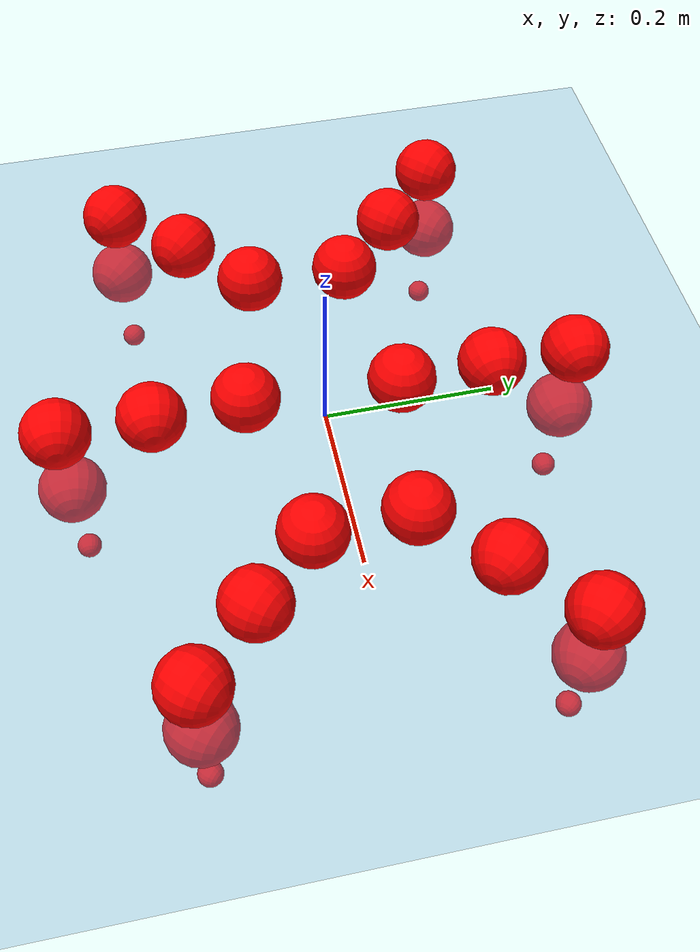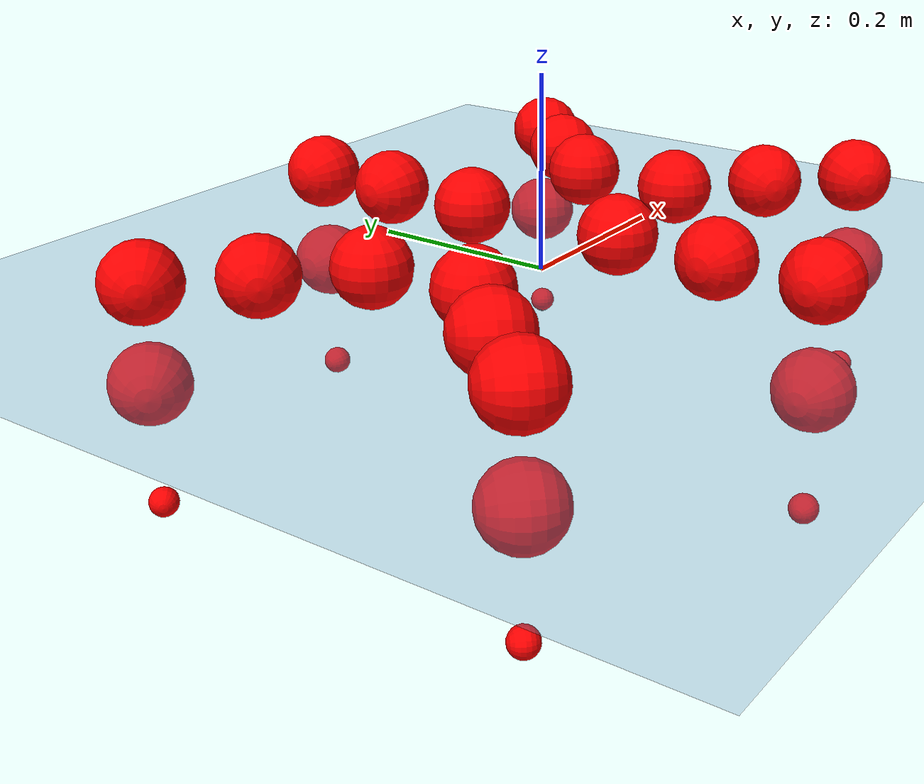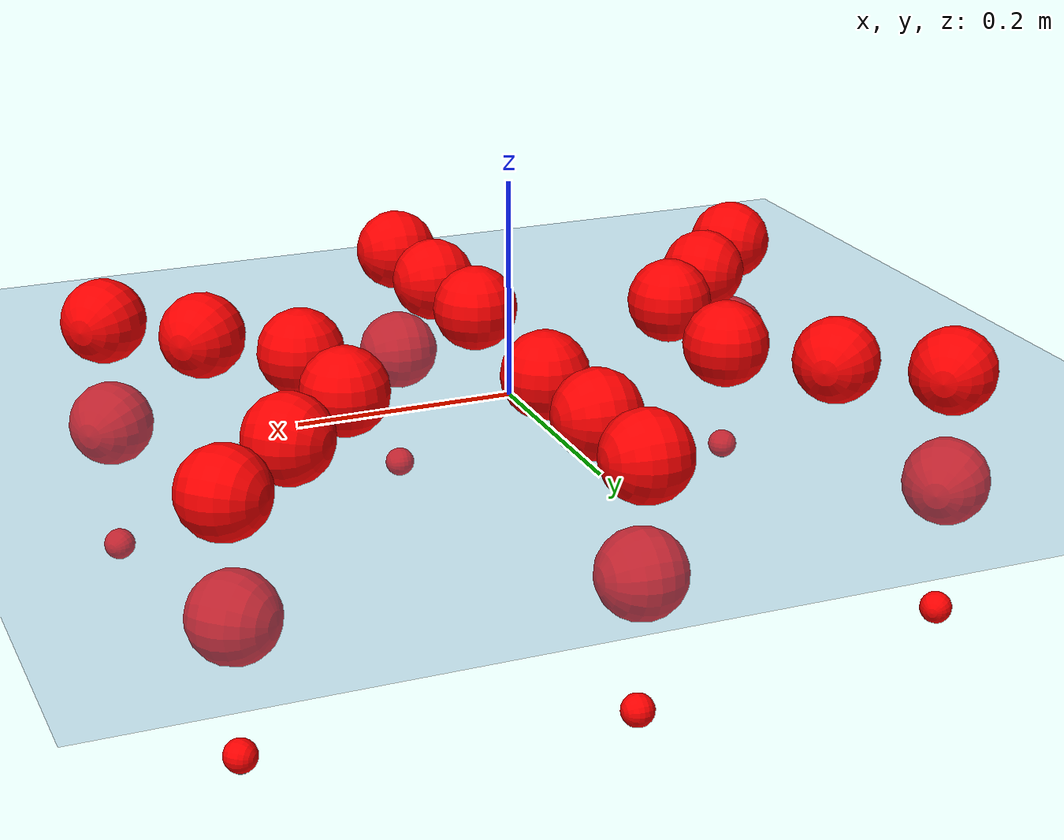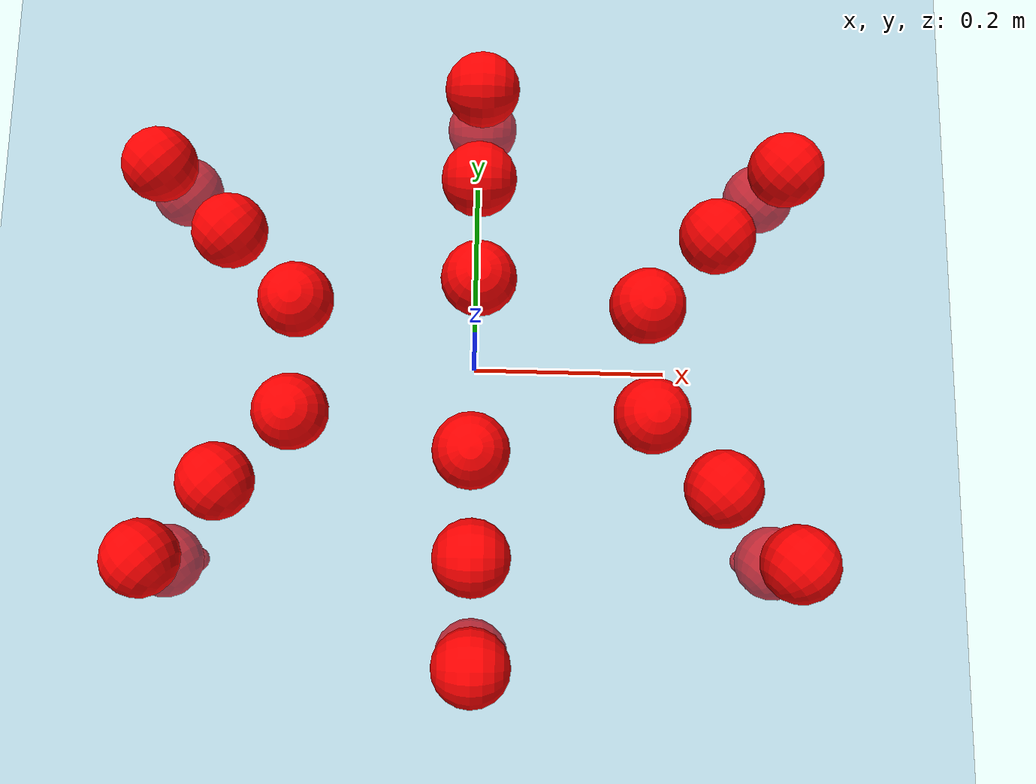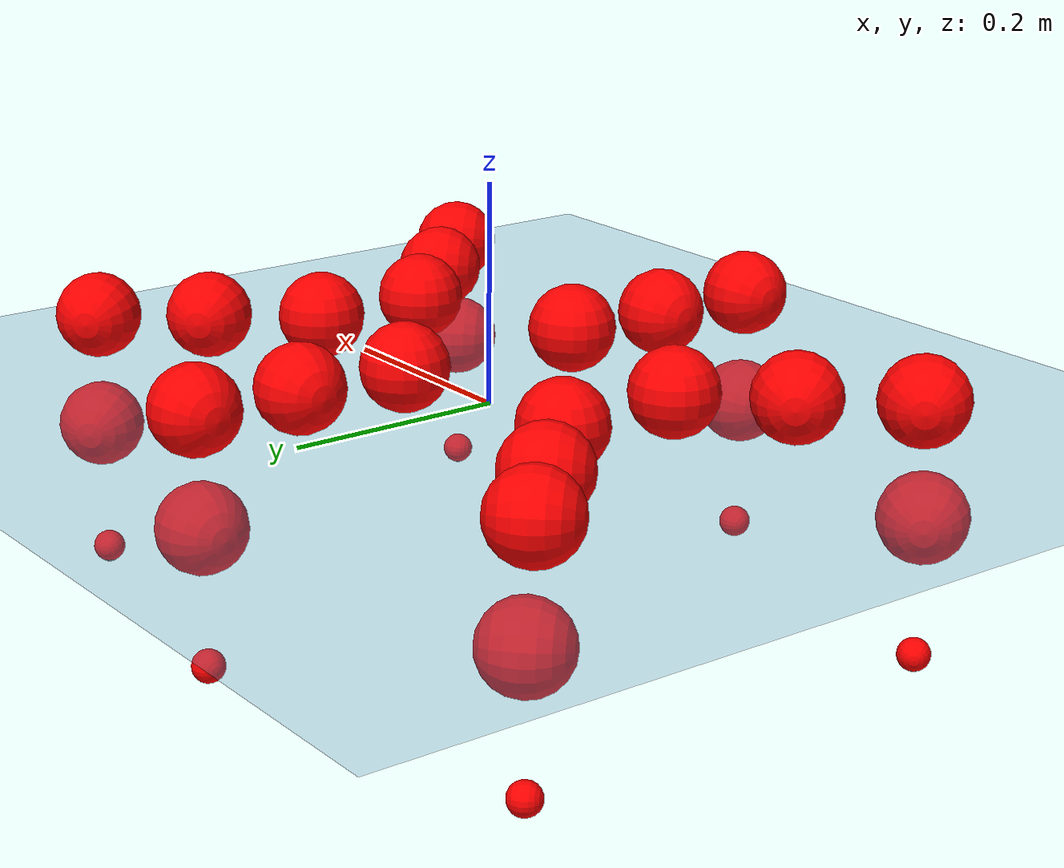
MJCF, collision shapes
<mujoco model="Golem">
  <compiler angle="radian" assetdir="assets" balanceinertia="true" inertiafromgeom="false"/>

  <option timestep="0.005" density="1.2" viscosity="2e-05"/>

  <size nkey="1"/>

  <visual>
    <quality shadowsize="8192"/>
    <map shadowclip="0.5"/>
  </visual>

  <default>
    <default class="/">
      <joint armature="0.01" damping="0.01" frictionloss="0.01"/>
      <geom contype="0" conaffinity="0" group="1" solref="-1000 -80"/>
      <site size="0.01 0.005 0.005" group="5"/>
      <general forcelimited="true" biastype="affine" gainprm="25" biasprm="0 -25 -0.5"/>
      <default class="visual">
        <geom type="mesh" group="2"/>
      </default>
      <default class="collision">
        <geom group="3"/>
      </default>
      <default class="foot">
        <geom size="0.01 0 0" condim="6" group="4" priority="1" solimp="0.015 1 0.01"/>
      </default>
      <default class="reward_collision_sphere">
        <geom group="5" rgba="1 0 0 1"/>
      </default>
    </default>
  </default>

  <asset>
    <texture type="skybox" colorspace="auto" name="//unnamed_texture_0" builtin="gradient" rgb1="0.95 0.95 0.95" rgb2="0.95 0.95 0.95" width="100" height="600"/>
    <texture type="2d" colorspace="auto" name="texplane" builtin="checker" rgb1="0.345 0.575 0.748" rgb2="0.345 0.575 0.748" markrgb="1 1 1" width="512" height="512"/>
    <material name="MatPlane" class="/" texture="texplane" texuniform="true" texrepeat="2 2" specular="0.9"/>
    <mesh name="body" class="/" file="body.stl" scale="0.001 0.001 0.001"/>
    <mesh name="coxa" class="/" file="coxa.stl" scale="0.001 0.001 0.001"/>
    <mesh name="femur" class="/" file="femur.stl" scale="0.001 0.001 0.001"/>
    <mesh name="tibia" class="/" file="tibia.stl" scale="0.001 0.001 0.001"/>
    <mesh name="tarsus" class="/" file="tarsus.stl" scale="0.001 0.001 0.001"/>
  </asset>

  <worldbody>
    <geom name="floor" class="/" size="100 100 0.125" type="plane" group="0" material="MatPlane"/>
    <light name="toplight_shadow" class="/" pos="0 0 5" dir="0.0990148 0.0990148 -0.990148" type="directional" ambient="0.04 0.04 0.04" diffuse="0.55 0.55 0.55" specular="0.12 0.12 0.12"/>
    <light name="toplight_fill" class="/" pos="0 0 5" dir="0.0990148 0.0990148 -0.990148" type="directional" castshadow="false" ambient="0.04 0.04 0.04" diffuse="0.3 0.3 0.3" specular="0.08 0.08 0.08"/>
    <body name="trunk" pos="-0.00237259 0.00245523 -0.00248803" quat="0.999999 -0.000766964 -0.000918018 -0.000335605">
      <inertial pos="-0.00134698 0.00227182 -0.00759176" quat="0.999993 0.00189744 0.00204193 -0.00250723" mass="3.2461" diaginertia="0.019069 0.00768971 0.00407089"/>
      <joint name="//unnamed_joint_0" type="free"/>
      <geom name="//unnamed_geom_1" class="/" pos="0 0 0.0542854" quat="1 0 0 0" type="mesh" rgba="0.9 0.9 0.9 1" mesh="body"/>
      <site name="imu" class="/" pos="0.159218 0.0116249 0.103901" size="0.00989762"/>
      <camera name="track" class="/" pos="0 -1.91315 0" quat="0.707107 0.707107 0 0" mode="trackcom"/>
      <camera name="ego_camera" class="/" pos="0.151385 0 0.084821" quat="-0.5 -0.5 0.5 0.5"/>
      <body name="coxa_RR" pos="-0.208114 -0.0813372 0.0528821" quat="0.382953 0.000162073 -0.000444902 -0.923768">
        <inertial pos="0.00067044 -0.000484595 0.0007792" quat="0.999994 -0.00265752 0.000624668 0.00216176" mass="0.187989" diaginertia="0.0211629 0.00786004 0.00445161"/>
        <joint name="coxa_joint_RR" class="/" pos="0 0 0" axis="-0.0215259 0.0188119 -0.999591" range="-3.13343 3.13191" armature="0.0109659" damping="0.00452551" frictionloss="0.0100456"/>
        <geom name="//unnamed_geom_2" class="/" type="mesh" rgba="0.2 0.2 0.2 1" mesh="coxa"/>
        <geom name="//unnamed_geom_3" class="reward_collision_sphere" size="0.0395905" pos="-0.0349351 0 0"/>
        <body name="femur_RR" pos="0.0663892 -7.54057e-05 0.000452968" quat="0.499999 -0.499997 0.499997 0.500007">
          <inertial pos="0.00258312 -0.000701902 -0.000341037" quat="0.999999 -0.000225663 0.000143773 0.00099882" mass="0.194244" diaginertia="0.0210417 0.00827288 0.00458738"/>
          <joint name="femur_joint_RR" class="/" pos="0 0 0" axis="0.0140205 0.00613643 -0.999883" range="-3.13707 3.18234" armature="0.0099273" damping="0" frictionloss="0.0106167"/>
          <geom name="//unnamed_geom_4" class="/" type="mesh" rgba="0.9 0.9 0.9 1" mesh="femur"/>
          <geom name="//unnamed_geom_5" class="reward_collision_sphere" size="0.0395905"/>
          <body name="tibia_RR" pos="-0.000445609 -0.103816 0.00550119" quat="-3.06822e-05 1 0.000145372 1.23072e-05">
            <inertial pos="-0.0013424 0.00438222 0.0010791" quat="0.999747 -0.00587204 0.0190825 0.0103337" mass="0.194372" diaginertia="0.0206182 0.00803216 0.00450639"/>
            <joint name="tibia_joint_RR" class="/" pos="0 0 0" axis="-1.73408e-05 -0.00204297 0.999998" range="-3.14802 3.08956" armature="0.00994854" damping="0.0119114" frictionloss="0.00895508"/>
            <geom name="//unnamed_geom_6" class="/" type="mesh" rgba="0.2 0.2 0.2 1" mesh="tibia"/>
            <geom name="//unnamed_geom_7" class="reward_collision_sphere" size="0.0395905"/>
            <body name="tarsus_RR" pos="0.102621 0.00475191 -0.000677619" quat="1 -0.000137302 -5.8838e-05 0.000195259">
              <inertial pos="0.0718648 0.00112317 0.000576816" quat="0.489969 0.495282 0.511447 0.503038" mass="0.185723" diaginertia="0.0201785 0.00786064 0.00446296"/>
              <joint name="tarsus_joint_RR" class="/" pos="0 0 0" axis="0.00537232 -0.00432383 0.999976" range="-3.13142 3.0917" armature="0.00867559" damping="0.0185783" frictionloss="0.00906384"/>
              <geom name="//unnamed_geom_8" class="/" type="mesh" rgba="0.9 0.9 0.9 1" mesh="tarsus"/>
              <geom name="foot_1" class="foot" size="0.0102066" pos="0.130424 0 0" quat="0 -0.707107 0 0.707107"/>
              <geom name="//unnamed_geom_10" class="reward_collision_sphere" size="0.0395905"/>
              <geom name="//unnamed_geom_11" class="reward_collision_sphere" size="0.0148464" pos="0.125184 0 0"/>
              <site name="foot_1" class="foot" pos="0.130424 0 0" quat="0 -0.707107 0 0.707107" size="0.00989762"/>
            </body>
          </body>
        </body>
      </body>
      <body name="coxa_RM" pos="0.000325147 -0.127589 0.0570174" quat="0.70678 0.00269436 -0.000883369 -0.707427">
        <inertial pos="-0.000711669 8.23662e-08 0.00260577" quat="0.999998 0.000535128 -0.00164231 -0.00085313" mass="0.188324" diaginertia="0.0218434 0.00781154 0.00432536"/>
        <joint name="coxa_joint_RM" class="/" pos="0 0 0" axis="-0.00934014 0.00292782 -0.999952" stiffness="0.00533913" range="-3.11058 3.15341" armature="0.00930716" damping="0.0138325" frictionloss="0.0108762"/>
        <geom name="//unnamed_geom_12" class="/" type="mesh" rgba="0.2 0.2 0.2 1" mesh="coxa"/>
        <geom name="//unnamed_geom_13" class="reward_collision_sphere" size="0.0395905" pos="-0.0349351 0 0"/>
        <body name="femur_RM" pos="0.0711587 0.00264648 -0.00333137" quat="0.49979 -0.499942 0.499248 0.501018">
          <inertial pos="-0.00429516 -0.000271715 -0.00051849" quat="0.999944 0.000271851 0.00708502 -0.00790504" mass="0.201686" diaginertia="0.0232535 0.00827979 0.00482422"/>
          <joint name="femur_joint_RM" class="/" pos="0 0 0" axis="0.00036669 -0.00533979 -0.999986" range="-3.12345 3.21102" armature="0.011158" damping="0.00542771" frictionloss="0.00954677"/>
          <geom name="//unnamed_geom_14" class="/" type="mesh" rgba="0.9 0.9 0.9 1" mesh="femur"/>
          <geom name="//unnamed_geom_15" class="reward_collision_sphere" size="0.0395905"/>
          <body name="tibia_RM" pos="-0.000221681 -0.105377 0.00154965" quat="4.65247e-05 1 -4.6358e-06 -1.15379e-05">
            <inertial pos="-3.42528e-05 -0.00550837 0.00163196" quat="0.999999 -0.000781871 0.000900284 -4.41004e-05" mass="0.198883" diaginertia="0.0211935 0.00788959 0.00431408"/>
            <joint name="tibia_joint_RM" class="/" pos="0 0 0" axis="-0.0011415 -0.00921297 0.999957" range="-3.12757 3.13713" armature="0.00876847" damping="0" frictionloss="0.00970462"/>
            <geom name="//unnamed_geom_16" class="/" type="mesh" rgba="0.2 0.2 0.2 1" mesh="tibia"/>
            <geom name="//unnamed_geom_17" class="reward_collision_sphere" size="0.0395905"/>
            <body name="tarsus_RM" pos="0.107661 -0.000727259 0.000877791" quat="1 -4.31361e-05 4.16628e-06 -0.000209448">
              <inertial pos="0.0671297 -0.00122922 0.00260389" quat="0.501286 0.500354 0.50097 0.49738" mass="0.179418" diaginertia="0.0212823 0.00780257 0.00407813"/>
              <joint name="tarsus_joint_RM" class="/" pos="0 0 0" axis="-0.000779501 -0.0120662 0.999927" range="-3.11028 3.18179" armature="0.010379" damping="0.0101209" frictionloss="0.0106307"/>
              <geom name="//unnamed_geom_18" class="/" type="mesh" rgba="0.9 0.9 0.9 1" mesh="tarsus"/>
              <geom name="foot_2" class="foot" size="0.00984527" pos="0.130424 0 0" quat="0 -0.707107 0 0.707107"/>
              <geom name="//unnamed_geom_20" class="reward_collision_sphere" size="0.0395905"/>
              <geom name="//unnamed_geom_21" class="reward_collision_sphere" size="0.0148464" pos="0.125184 0 0"/>
              <site name="foot_2" class="foot" pos="0.130424 0 0" quat="0 -0.707107 0 0.707107" size="0.00989762"/>
            </body>
          </body>
        </body>
      </body>
      <body name="coxa_RF" pos="0.207757 -0.0775193 0.0516333" quat="0.923968 6.70714e-05 -0.00107578 -0.382468">
        <inertial pos="-0.00244565 0.00380551 -0.00143925" quat="0.99984 -0.00960215 -0.00647058 -0.0136456" mass="0.200625" diaginertia="0.0211298 0.00805843 0.00441387"/>
        <joint name="coxa_joint_RF" class="/" pos="0 0 0" axis="0.0107532 -0.00569313 -0.999926" stiffness="0.00875546" range="-3.22173 3.15607" armature="0.0111082" damping="0.00767093" frictionloss="0.00980654"/>
        <geom name="//unnamed_geom_22" class="/" type="mesh" rgba="0.2 0.2 0.2 1" mesh="coxa"/>
        <geom name="//unnamed_geom_23" class="reward_collision_sphere" size="0.0395905" pos="-0.0349351 0 0"/>
        <body name="femur_RF" pos="0.0665099 -0.00105531 0.000743535" quat="0.499717 -0.500011 0.500135 0.500136">
          <inertial pos="0.00108163 -0.00371279 0.000981256" quat="0.99993 0.00684685 -0.000375054 0.00965888" mass="0.190589" diaginertia="0.0198556 0.00750038 0.0040186"/>
          <joint name="femur_joint_RF" class="/" pos="0 0 0" axis="0.000869998 0.00812216 -0.999967" range="-3.16915 3.11609" armature="0.00969437" damping="0.00134575" frictionloss="0.00932669"/>
          <geom name="//unnamed_geom_24" class="/" type="mesh" rgba="0.9 0.9 0.9 1" mesh="femur"/>
          <geom name="//unnamed_geom_25" class="reward_collision_sphere" size="0.0395905"/>
          <body name="tibia_RF" pos="7.37508e-05 -0.103944 0.00114077" quat="-0.000300435 1 9.46298e-05 5.02147e-05">
            <inertial pos="-0.000487468 0.000271542 0.00501095" quat="0.999909 0.0109097 0.00673142 -0.00416909" mass="0.192329" diaginertia="0.0201451 0.00810673 0.0041692"/>
            <joint name="tibia_joint_RF" class="/" pos="0 0 0" axis="-0.00665889 -0.00373223 0.999971" range="-3.14685 3.15234" armature="0.00994151" damping="0.0147183" frictionloss="0.0101621"/>
            <geom name="//unnamed_geom_26" class="/" type="mesh" rgba="0.2 0.2 0.2 1" mesh="tibia"/>
            <geom name="//unnamed_geom_27" class="reward_collision_sphere" size="0.0395905"/>
            <body name="tarsus_RF" pos="0.101918 -0.000212228 0.000890251" quat="1 -0.00067559 -2.52819e-05 -0.000113757">
              <inertial pos="0.0686105 0.00245905 0.00210949" quat="0.499622 0.501331 0.499211 0.499834" mass="0.196352" diaginertia="0.020839 0.00835296 0.00465949"/>
              <joint name="tarsus_joint_RF" class="/" pos="0 0 0" axis="0.000254384 0.00169063 0.999999" stiffness="0.0292382" range="-3.1738 3.13739" armature="0.0113072" damping="0.026455" frictionloss="0.0111214"/>
              <geom name="//unnamed_geom_28" class="/" type="mesh" rgba="0.9 0.9 0.9 1" mesh="tarsus"/>
              <geom name="foot_3" class="foot" size="0.0102072" pos="0.130424 0 0" quat="0 -0.707107 0 0.707107"/>
              <geom name="//unnamed_geom_30" class="reward_collision_sphere" size="0.0395905"/>
              <geom name="//unnamed_geom_31" class="reward_collision_sphere" size="0.0148464" pos="0.125184 0 0"/>
              <site name="foot_3" class="foot" pos="0.130424 0 0" quat="0 -0.707107 0 0.707107" size="0.00989762"/>
            </body>
          </body>
        </body>
      </body>
      <body name="coxa_LR" pos="-0.20873 0.0852763 0.0480657" quat="0.383437 0.000305685 -4.54168e-06 0.923567">
        <inertial pos="0.00103473 0.00153758 0.00151853" quat="0.999977 -0.00158283 -0.0058215 0.00322984" mass="0.20235" diaginertia="0.0202417 0.00821765 0.00473512"/>
        <joint name="coxa_joint_LR" class="/" pos="0 0 0" axis="-0.00592447 0.00412256 -0.999974" range="-3.1489 3.1657" armature="0.01069" damping="0" frictionloss="0.0104289"/>
        <geom name="//unnamed_geom_32" class="/" type="mesh" rgba="0.2 0.2 0.2 1" mesh="coxa"/>
        <geom name="//unnamed_geom_33" class="reward_collision_sphere" size="0.0395905" pos="-0.0349351 0 0"/>
        <body name="femur_LR" pos="0.0680894 0.000292416 -0.00136092" quat="0.49917 -0.500734 0.499338 0.500755">
          <inertial pos="0.00174779 0.00571266 0.00190073" quat="0.999998 0.000644899 -0.000129991 -0.00176865" mass="0.194189" diaginertia="0.0225628 0.00794383 0.00465699"/>
          <joint name="femur_joint_LR" class="/" pos="0 0 0" axis="-0.00584588 0.000226625 0.999983" range="-3.20342 3.15391" armature="0.00897688" damping="0.0402239" frictionloss="0.00979847"/>
          <geom name="//unnamed_geom_34" class="/" type="mesh" rgba="0.9 0.9 0.9 1" mesh="femur"/>
          <geom name="//unnamed_geom_35" class="reward_collision_sphere" size="0.0395905"/>
          <body name="tibia_LR" pos="-0.00325202 -0.103991 0.00508148" quat="0.00010125 1 -0.00013973 -0.000267737">
            <inertial pos="0.000487138 0.00157457 -0.000141118" quat="0.999908 0.0023657 -0.0107219 -0.00793645" mass="0.205513" diaginertia="0.0226195 0.00823565 0.00452542"/>
            <joint name="tibia_joint_LR" class="/" pos="0 0 0" axis="-0.0122311 -0.00190815 -0.999923" stiffness="0.0158118" range="-3.12695 3.0712" armature="0.0109863" damping="0" frictionloss="0.0100801"/>
            <geom name="//unnamed_geom_36" class="/" type="mesh" rgba="0.2 0.2 0.2 1" mesh="tibia"/>
            <geom name="//unnamed_geom_37" class="reward_collision_sphere" size="0.0395905"/>
            <body name="tarsus_LR" pos="0.102734 0.00220689 0.00528471" quat="1 4.60618e-05 -0.000354374 -0.000347934">
              <inertial pos="0.0652539 0.00439919 0.00325776" quat="0.494316 0.497354 0.504225 0.504031" mass="0.193325" diaginertia="0.0216687 0.00785564 0.00451995"/>
              <joint name="tarsus_joint_LR" class="/" pos="0 0 0" axis="0.0115668 -0.0117863 -0.999864" stiffness="0.0157487" range="-3.17142 3.13307" armature="0.0102773" damping="0.019584" frictionloss="0.00977408"/>
              <geom name="//unnamed_geom_38" class="/" type="mesh" rgba="0.9 0.9 0.9 1" mesh="tarsus"/>
              <geom name="foot_4" class="foot" size="0.00788722" pos="0.130424 0 0" quat="0.707107 0 -0.707107 0"/>
              <geom name="//unnamed_geom_40" class="reward_collision_sphere" size="0.0395905"/>
              <geom name="//unnamed_geom_41" class="reward_collision_sphere" size="0.0148464" pos="0.125184 0 0"/>
              <site name="foot_4" class="foot" pos="0.130424 0 0" quat="0.707107 0 -0.707107 0" size="0.00989762"/>
            </body>
          </body>
        </body>
      </body>
      <body name="coxa_LM" pos="0.00486268 0.120793 0.0528606" quat="0.707372 0.000110138 -0.00059836 0.706841">
        <inertial pos="-0.00165933 0.000914385 0.00214831" quat="0.999902 0.00864166 -0.00341403 0.0105038" mass="0.186604" diaginertia="0.0206916 0.00751098 0.00408827"/>
        <joint name="coxa_joint_LM" class="/" pos="0 0 0" axis="0.0114493 0.0237008 -0.999654" range="-3.13274 3.18888" armature="0.0109443" damping="0.00706493" frictionloss="0.00995685"/>
        <geom name="//unnamed_geom_42" class="/" type="mesh" rgba="0.2 0.2 0.2 1" mesh="coxa"/>
        <geom name="//unnamed_geom_43" class="reward_collision_sphere" size="0.0395905" pos="-0.0349351 0 0"/>
        <body name="femur_LM" pos="0.0714228 0.00192955 0.00162955" quat="0.500002 -0.500088 0.499999 0.499911">
          <inertial pos="-0.000872141 -0.00262305 -0.00255383" quat="0.999978 -0.00418546 -0.00476308 0.00212943" mass="0.19414" diaginertia="0.0219117 0.00743338 0.00418754"/>
          <joint name="femur_joint_LM" class="/" pos="0 0 0" axis="-0.00278035 -0.00346186 0.99999" stiffness="0.0106591" range="-3.09138 3.17133" armature="0.00858797" damping="0.00695681" frictionloss="0.0102185"/>
          <geom name="//unnamed_geom_44" class="/" type="mesh" rgba="0.9 0.9 0.9 1" mesh="femur"/>
          <geom name="//unnamed_geom_45" class="reward_collision_sphere" size="0.0395905"/>
          <body name="tibia_LM" pos="-0.000675353 -0.099094 -0.00153411" quat="0.000202646 0.999999 0.00103359 -0.000283062">
            <inertial pos="-6.59711e-05 0.000205981 0.00261795" quat="0.999872 -0.00346282 0.0108043 0.0112678" mass="0.185735" diaginertia="0.0206015 0.00730578 0.00413286"/>
            <joint name="tibia_joint_LM" class="/" pos="0 0 0" axis="-0.00380235 -0.000977693 -0.999992" stiffness="0.0211625" range="-3.12663 3.13558" armature="0.0103433" damping="0.00970793" frictionloss="0.0108339"/>
            <geom name="//unnamed_geom_46" class="/" type="mesh" rgba="0.2 0.2 0.2 1" mesh="tibia"/>
            <geom name="//unnamed_geom_47" class="reward_collision_sphere" size="0.0395905"/>
            <body name="tarsus_LM" pos="0.103725 -0.00219406 0.000487341" quat="0.999999 -0.000147573 0.000275283 -0.00133799">
              <inertial pos="0.0704417 0.000898532 0.000769581" quat="0.505283 0.49966 0.508182 0.486601" mass="0.182709" diaginertia="0.0195324 0.00763936 0.00429699"/>
              <joint name="tarsus_joint_LM" class="/" pos="0 0 0" axis="-0.00642913 -0.0240332 -0.99969" range="-3.1041 3.10865" armature="0.00915745" damping="0.0229131" frictionloss="0.00835059"/>
              <geom name="//unnamed_geom_48" class="/" type="mesh" rgba="0.9 0.9 0.9 1" mesh="tarsus"/>
              <geom name="foot_5" class="foot" size="0.00961793" pos="0.130424 0 0" quat="0.707107 0 -0.707107 0"/>
              <geom name="//unnamed_geom_50" class="reward_collision_sphere" size="0.0395905"/>
              <geom name="//unnamed_geom_51" class="reward_collision_sphere" size="0.0148464" pos="0.125184 0 0"/>
              <site name="foot_5" class="foot" pos="0.130424 0 0" quat="0.707107 0 -0.707107 0" size="0.00989762"/>
            </body>
          </body>
        </body>
      </body>
      <body name="coxa_LF" pos="0.203638 0.0847055 0.0530069" quat="0.924241 -0.000268697 0.00081459 0.381808">
        <inertial pos="-0.000966207 -0.000557016 -0.00258813" quat="0.999982 0.00314902 -0.00509051 0.000989675" mass="0.192208" diaginertia="0.0220828 0.00758922 0.00436633"/>
        <joint name="coxa_joint_LF" class="/" pos="0 0 0" axis="0.00463306 -0.00841253 -0.999954" stiffness="0.00230179" range="-3.18684 3.15265" armature="0.0108929" damping="0.00568178" frictionloss="0.00715968"/>
        <geom name="//unnamed_geom_52" class="/" type="mesh" rgba="0.2 0.2 0.2 1" mesh="coxa"/>
        <geom name="//unnamed_geom_53" class="reward_collision_sphere" size="0.0395905" pos="-0.0349351 0 0"/>
        <body name="femur_LF" pos="0.0712194 0.00255369 -0.00337546" quat="0.500161 -0.500525 0.500347 0.498965">
          <inertial pos="0.00519991 0.000763227 -0.00563944" quat="0.999973 -0.0027727 0.004373 -0.00517976" mass="0.192874" diaginertia="0.0206975 0.00829835 0.00438858"/>
          <joint name="femur_joint_LF" class="/" pos="0 0 0" axis="-0.000633223 -0.000536379 1" stiffness="0.00765211" range="-3.12579 3.11756" armature="0.00992673" damping="0.0133709" frictionloss="0.0111358"/>
          <geom name="//unnamed_geom_54" class="/" type="mesh" rgba="0.9 0.9 0.9 1" mesh="femur"/>
          <geom name="//unnamed_geom_55" class="reward_collision_sphere" size="0.0395905"/>
          <body name="tibia_LF" pos="0.00498079 -0.10644 0.000736322" quat="-7.28768e-05 1 1.75139e-05 4.33635e-05">
            <inertial pos="-0.00135449 0.00512092 -0.00256281" quat="0.999999 -0.00138661 -0.000133419 -0.000706953" mass="0.212667" diaginertia="0.02429 0.00867525 0.00483545"/>
            <joint name="tibia_joint_LF" class="/" pos="0 0 0" axis="0.00175817 -0.00756477 -0.99997" range="-3.13573 3.18038" armature="0.00953617" damping="0.0092481" frictionloss="0.00993803"/>
            <geom name="//unnamed_geom_56" class="/" type="mesh" rgba="0.2 0.2 0.2 1" mesh="tibia"/>
            <geom name="//unnamed_geom_57" class="reward_collision_sphere" size="0.0395905"/>
            <body name="tarsus_LF" pos="0.105573 0.00153125 -0.00450805" quat="0.999999 -4.3975e-06 -0.000691111 -0.000947842">
              <inertial pos="0.0727228 0.000747418 -0.00258759" quat="0.500136 0.50034 0.499254 0.50027" mass="0.210246" diaginertia="0.0233311 0.00872556 0.00476391"/>
              <joint name="tarsus_joint_LF" class="/" pos="0 0 0" axis="0.00768107 -0.00481234 -0.999959" stiffness="0.00125299" range="-3.0916 3.14885" armature="0.00900229" damping="0.0267922" frictionloss="0.0122681"/>
              <geom name="//unnamed_geom_58" class="/" type="mesh" rgba="0.9 0.9 0.9 1" mesh="tarsus"/>
              <geom name="foot_6" class="foot" size="0.0106587" pos="0.130424 0 0" quat="0.707107 0 -0.707107 0"/>
              <geom name="//unnamed_geom_60" class="reward_collision_sphere" size="0.0395905"/>
              <geom name="//unnamed_geom_61" class="reward_collision_sphere" size="0.0148464" pos="0.125184 0 0"/>
              <site name="foot_6" class="foot" pos="0.130424 0 0" quat="0.707107 0 -0.707107 0" size="0.00989762"/>
            </body>
          </body>
        </body>
      </body>
    </body>
  </worldbody>

  <contact>
    <pair class="/" geom1="floor" geom2="foot_1" name="//unnamed_contact_0"/>
    <pair class="/" geom1="floor" geom2="foot_2" name="//unnamed_contact_1"/>
    <pair class="/" geom1="floor" geom2="foot_3" name="//unnamed_contact_2"/>
    <pair class="/" geom1="floor" geom2="foot_4" name="//unnamed_contact_3"/>
    <pair class="/" geom1="floor" geom2="foot_5" name="//unnamed_contact_4"/>
    <pair class="/" geom1="floor" geom2="foot_6" name="//unnamed_contact_5"/>
  </contact>

  <actuator>
    <general name="coxa_joint_RR" class="/" joint="coxa_joint_RR" forcerange="-6.67232 6.67232" gainprm="22.7622" biasprm="0 -22.7622 -0.46624"/>
    <general name="femur_joint_RR" class="/" joint="femur_joint_RR" forcerange="-6.74984 6.74984" gainprm="22.7622" biasprm="0 -22.7622 -0.46624"/>
    <general name="tibia_joint_RR" class="/" joint="tibia_joint_RR" forcerange="-6.58396 6.58396" gainprm="22.7622" biasprm="0 -22.7622 -0.46624"/>
    <general name="tarsus_joint_RR" class="/" joint="tarsus_joint_RR" forcerange="-6.44776 6.44776" gainprm="22.7622" biasprm="0 -22.7622 -0.46624"/>
    <general name="coxa_joint_RM" class="/" joint="coxa_joint_RM" forcerange="-7.72797 7.72797" gainprm="22.7622" biasprm="0 -22.7622 -0.46624"/>
    <general name="femur_joint_RM" class="/" joint="femur_joint_RM" forcerange="-7.24656 7.24656" gainprm="22.7622" biasprm="0 -22.7622 -0.46624"/>
    <general name="tibia_joint_RM" class="/" joint="tibia_joint_RM" forcerange="-7.01279 7.01279" gainprm="22.7622" biasprm="0 -22.7622 -0.46624"/>
    <general name="tarsus_joint_RM" class="/" joint="tarsus_joint_RM" forcerange="-6.03688 6.03688" gainprm="22.7622" biasprm="0 -22.7622 -0.46624"/>
    <general name="coxa_joint_RF" class="/" joint="coxa_joint_RF" forcerange="-7.42071 7.42071" gainprm="22.7622" biasprm="0 -22.7622 -0.46624"/>
    <general name="femur_joint_RF" class="/" joint="femur_joint_RF" forcerange="-8.27214 8.27214" gainprm="22.7622" biasprm="0 -22.7622 -0.46624"/>
    <general name="tibia_joint_RF" class="/" joint="tibia_joint_RF" forcerange="-7.1697 7.1697" gainprm="22.7622" biasprm="0 -22.7622 -0.46624"/>
    <general name="tarsus_joint_RF" class="/" joint="tarsus_joint_RF" forcerange="-7.40563 7.40563" gainprm="22.7622" biasprm="0 -22.7622 -0.46624"/>
    <general name="coxa_joint_LR" class="/" joint="coxa_joint_LR" forcerange="-7.1561 7.1561" gainprm="22.7622" biasprm="0 -22.7622 -0.46624"/>
    <general name="femur_joint_LR" class="/" joint="femur_joint_LR" forcerange="-7.36332 7.36332" gainprm="22.7622" biasprm="0 -22.7622 -0.46624"/>
    <general name="tibia_joint_LR" class="/" joint="tibia_joint_LR" forcerange="-7.32804 7.32804" gainprm="22.7622" biasprm="0 -22.7622 -0.46624"/>
    <general name="tarsus_joint_LR" class="/" joint="tarsus_joint_LR" forcerange="-7.17131 7.17131" gainprm="22.7622" biasprm="0 -22.7622 -0.46624"/>
    <general name="coxa_joint_LM" class="/" joint="coxa_joint_LM" forcerange="-6.56478 6.56478" gainprm="22.7622" biasprm="0 -22.7622 -0.46624"/>
    <general name="femur_joint_LM" class="/" joint="femur_joint_LM" forcerange="-7.27675 7.27675" gainprm="22.7622" biasprm="0 -22.7622 -0.46624"/>
    <general name="tibia_joint_LM" class="/" joint="tibia_joint_LM" forcerange="-6.71623 6.71623" gainprm="22.7622" biasprm="0 -22.7622 -0.46624"/>
    <general name="tarsus_joint_LM" class="/" joint="tarsus_joint_LM" forcerange="-6.54502 6.54502" gainprm="22.7622" biasprm="0 -22.7622 -0.46624"/>
    <general name="coxa_joint_LF" class="/" joint="coxa_joint_LF" forcerange="-7.96273 7.96273" gainprm="22.7622" biasprm="0 -22.7622 -0.46624"/>
    <general name="femur_joint_LF" class="/" joint="femur_joint_LF" forcerange="-7.16059 7.16059" gainprm="22.7622" biasprm="0 -22.7622 -0.46624"/>
    <general name="tibia_joint_LF" class="/" joint="tibia_joint_LF" forcerange="-7.30418 7.30418" gainprm="22.7622" biasprm="0 -22.7622 -0.46624"/>
    <general name="tarsus_joint_LF" class="/" joint="tarsus_joint_LF" forcerange="-6.66742 6.66742" gainprm="22.7622" biasprm="0 -22.7622 -0.46624"/>
  </actuator>

  <sensor>
    <gyro site="imu" name="imu_angular_velocity"/>
    <velocimeter site="imu" name="imu_linear_velocity"/>
    <framelinvel objtype="site" objname="foot_1" name="foot_1_global_linear_velocity"/>
    <framelinvel objtype="site" objname="foot_2" name="foot_2_global_linear_velocity"/>
    <framelinvel objtype="site" objname="foot_3" name="foot_3_global_linear_velocity"/>
    <framelinvel objtype="site" objname="foot_4" name="foot_4_global_linear_velocity"/>
    <framelinvel objtype="site" objname="foot_5" name="foot_5_global_linear_velocity"/>
    <framelinvel objtype="site" objname="foot_6" name="foot_6_global_linear_velocity"/>
  </sensor>

  <keyframe>
    <key name="home" qpos="0 0 0.1457 1 0 0 0 0 0 0 0 0 0 0 0 0 0 0 0 0 0 0 0 0 0 0 0 0 0 0 0"/>
  </keyframe>
</mujoco>
